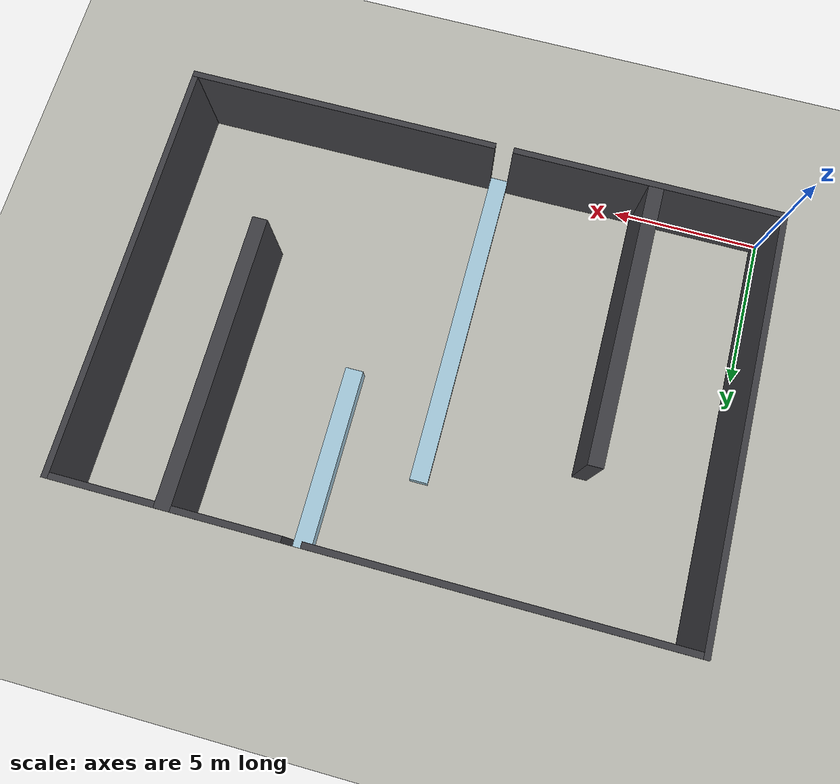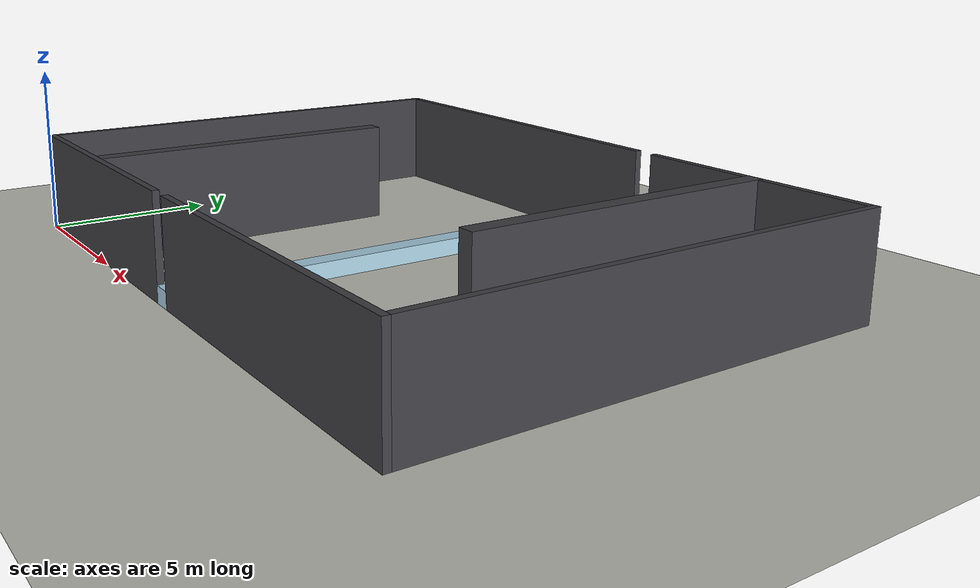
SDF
<?xml version="1.0" ?>
<!-- 자동 생성 파일 — 직접 수정하지 말 것.
     생성: python3 benchmark/export_sdf.py
     원본: benchmark/envs/heightmap.py 의 easy_corridor
     격벽 복도 + 낮은 벽 2개, 우회 11m/6m -->
<sdf version="1.9">
  <world name="easy_corridor">

    <physics name="1ms" type="ignored">
      <max_step_size>0.001</max_step_size>
      <real_time_factor>1.0</real_time_factor>
    </physics>

    <plugin filename="gz-sim-physics-system" name="gz::sim::systems::Physics">
    </plugin>
    <plugin filename="gz-sim-user-commands-system" name="gz::sim::systems::UserCommands">
    </plugin>
    <plugin filename="gz-sim-scene-broadcaster-system" name="gz::sim::systems::SceneBroadcaster">
    </plugin>
    <plugin filename="gz-sim-contact-system" name="gz::sim::systems::Contact">
    </plugin>
    <plugin filename="gz-sim-imu-system" name="gz::sim::systems::Imu">
    </plugin>
    <plugin filename="gz-sim-sensors-system" name="gz::sim::systems::Sensors">
      <render_engine>ogre</render_engine>
    </plugin>

    <light type="directional" name="sun">
      <cast_shadows>true</cast_shadows>
      <pose>0 0 10 0 0 0</pose>
      <diffuse>0.8 0.8 0.8 1</diffuse>
      <specular>0.2 0.2 0.2 1</specular>
      <direction>-0.5 0.1 -0.9</direction>
    </light>

    <model name="ground_plane">
      <static>true</static>
      <link name="link">
        <collision name="collision">
          <geometry><plane>
            <normal>0 0 1</normal>
            <size>30.0 24.0</size>
          </plane></geometry>
        </collision>
        <visual name="visual">
          <geometry><plane>
            <normal>0 0 1</normal>
            <size>30.0 24.0</size>
          </plane></geometry>
          <material>
            <ambient>0.75 0.75 0.72 1</ambient>
            <diffuse>0.75 0.75 0.72 1</diffuse>
          </material>
        </visual>
      </link>
    </model>

    <model name="obs_0001_h050">
      <static>true</static>
      <pose>9.300 5.500 0.250 0 0 0</pose>
      <link name="link">
        <collision name="collision">
          <geometry><box><size>0.600 11.000 0.500</size></box></geometry>
        </collision>
        <visual name="visual">
          <geometry><box><size>0.600 11.000 0.500</size></box></geometry>
          <material>
            <ambient>0.66 0.81 0.88 1</ambient>
            <diffuse>0.66 0.81 0.88 1</diffuse>
          </material>
        </visual>
      </link>
    </model>
    <model name="obs_0002_h070">
      <static>true</static>
      <pose>12.300 11.000 0.350 0 0 0</pose>
      <link name="link">
        <collision name="collision">
          <geometry><box><size>0.600 6.000 0.700</size></box></geometry>
        </collision>
        <visual name="visual">
          <geometry><box><size>0.600 6.000 0.700</size></box></geometry>
          <material>
            <ambient>0.66 0.81 0.88 1</ambient>
            <diffuse>0.66 0.81 0.88 1</diffuse>
          </material>
        </visual>
      </link>
    </model>
    <model name="obs_0003_h300">
      <static>true</static>
      <pose>4.500 0.100 1.500 0 0 0</pose>
      <link name="link">
        <collision name="collision">
          <geometry><box><size>9.000 0.200 3.000</size></box></geometry>
        </collision>
        <visual name="visual">
          <geometry><box><size>9.000 0.200 3.000</size></box></geometry>
          <material>
            <ambient>0.25 0.25 0.27 1</ambient>
            <diffuse>0.25 0.25 0.27 1</diffuse>
          </material>
        </visual>
      </link>
    </model>
    <model name="obs_0004_h300">
      <static>true</static>
      <pose>14.800 0.100 1.500 0 0 0</pose>
      <link name="link">
        <collision name="collision">
          <geometry><box><size>10.400 0.200 3.000</size></box></geometry>
        </collision>
        <visual name="visual">
          <geometry><box><size>10.400 0.200 3.000</size></box></geometry>
          <material>
            <ambient>0.25 0.25 0.27 1</ambient>
            <diffuse>0.25 0.25 0.27 1</diffuse>
          </material>
        </visual>
      </link>
    </model>
    <model name="obs_0005_h300">
      <static>true</static>
      <pose>0.100 7.100 1.500 0 0 0</pose>
      <link name="link">
        <collision name="collision">
          <geometry><box><size>0.200 13.800 3.000</size></box></geometry>
        </collision>
        <visual name="visual">
          <geometry><box><size>0.200 13.800 3.000</size></box></geometry>
          <material>
            <ambient>0.25 0.25 0.27 1</ambient>
            <diffuse>0.25 0.25 0.27 1</diffuse>
          </material>
        </visual>
      </link>
    </model>
    <model name="obs_0006_h300">
      <static>true</static>
      <pose>4.250 4.850 1.500 0 0 0</pose>
      <link name="link">
        <collision name="collision">
          <geometry><box><size>0.500 9.300 3.000</size></box></geometry>
        </collision>
        <visual name="visual">
          <geometry><box><size>0.500 9.300 3.000</size></box></geometry>
          <material>
            <ambient>0.25 0.25 0.27 1</ambient>
            <diffuse>0.25 0.25 0.27 1</diffuse>
          </material>
        </visual>
      </link>
    </model>
    <model name="obs_0007_h300">
      <static>true</static>
      <pose>19.900 7.100 1.500 0 0 0</pose>
      <link name="link">
        <collision name="collision">
          <geometry><box><size>0.200 13.800 3.000</size></box></geometry>
        </collision>
        <visual name="visual">
          <geometry><box><size>0.200 13.800 3.000</size></box></geometry>
          <material>
            <ambient>0.25 0.25 0.27 1</ambient>
            <diffuse>0.25 0.25 0.27 1</diffuse>
          </material>
        </visual>
      </link>
    </model>
    <model name="obs_0008_h300">
      <static>true</static>
      <pose>16.250 9.250 1.500 0 0 0</pose>
      <link name="link">
        <collision name="collision">
          <geometry><box><size>0.500 9.500 3.000</size></box></geometry>
        </collision>
        <visual name="visual">
          <geometry><box><size>0.500 9.500 3.000</size></box></geometry>
          <material>
            <ambient>0.25 0.25 0.27 1</ambient>
            <diffuse>0.25 0.25 0.27 1</diffuse>
          </material>
        </visual>
      </link>
    </model>
    <model name="obs_0009_h300">
      <static>true</static>
      <pose>6.100 13.900 1.500 0 0 0</pose>
      <link name="link">
        <collision name="collision">
          <geometry><box><size>11.800 0.200 3.000</size></box></geometry>
        </collision>
        <visual name="visual">
          <geometry><box><size>11.800 0.200 3.000</size></box></geometry>
          <material>
            <ambient>0.25 0.25 0.27 1</ambient>
            <diffuse>0.25 0.25 0.27 1</diffuse>
          </material>
        </visual>
      </link>
    </model>
    <model name="obs_0010_h300">
      <static>true</static>
      <pose>14.300 13.900 1.500 0 0 0</pose>
      <link name="link">
        <collision name="collision">
          <geometry><box><size>3.400 0.200 3.000</size></box></geometry>
        </collision>
        <visual name="visual">
          <geometry><box><size>3.400 0.200 3.000</size></box></geometry>
          <material>
            <ambient>0.25 0.25 0.27 1</ambient>
            <diffuse>0.25 0.25 0.27 1</diffuse>
          </material>
        </visual>
      </link>
    </model>
    <model name="obs_0011_h300">
      <static>true</static>
      <pose>18.150 13.900 1.500 0 0 0</pose>
      <link name="link">
        <collision name="collision">
          <geometry><box><size>3.300 0.200 3.000</size></box></geometry>
        </collision>
        <visual name="visual">
          <geometry><box><size>3.300 0.200 3.000</size></box></geometry>
          <material>
            <ambient>0.25 0.25 0.27 1</ambient>
            <diffuse>0.25 0.25 0.27 1</diffuse>
          </material>
        </visual>
      </link>
    </model>

  </world>
</sdf>
